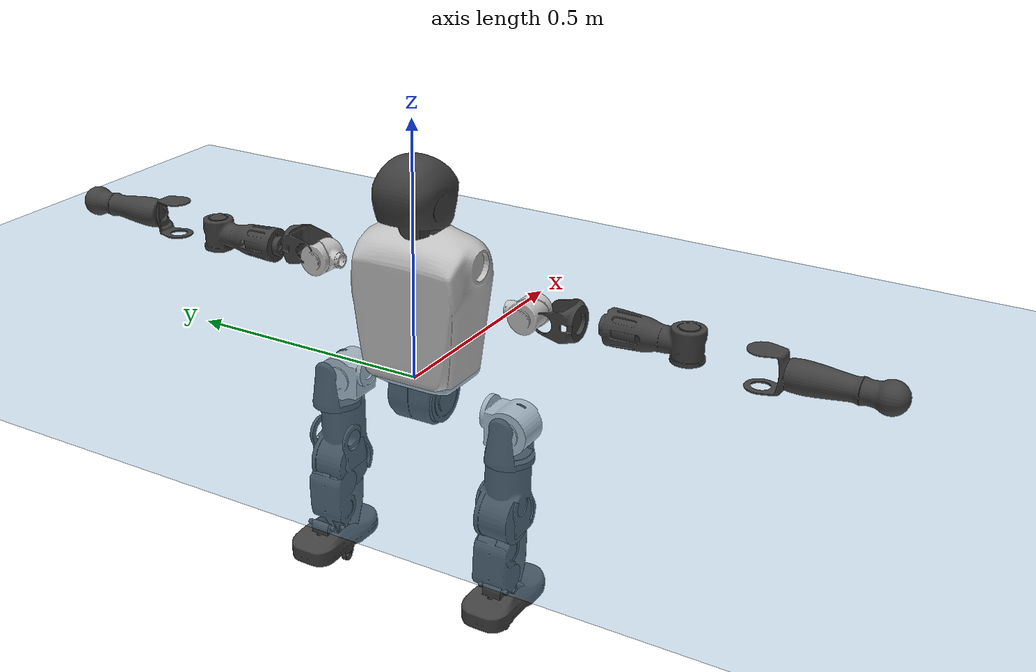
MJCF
<mujoco model="T1">
  <compiler angle="radian" assetdir="assets" balanceinertia="true" inertiafromgeom="false"/>

  <option timestep="0.005" density="1.2" viscosity="2e-05"/>

  <size nkey="1"/>

  <visual>
    <quality shadowsize="8192"/>
    <map shadowclip="0.5"/>
  </visual>

  <default>
    <default class="/">
      <joint armature="0.01" damping="0.01" frictionloss="0.1"/>
      <geom contype="0" conaffinity="0" group="1" solref="-1000 -80"/>
      <site size="0.01 0.005 0.005" group="5"/>
      <general forcelimited="true" biastype="affine" gainprm="25" biasprm="0 -25 -0.6"/>
      <default class="t1">
        <geom rgba="0.25 0.25 0.25 1"/>
        <default class="visual">
          <geom type="mesh" group="2"/>
        </default>
        <default class="collision">
          <geom group="3"/>
        </default>
        <default class="foot">
          <geom size="0.1115 0.05 0.015" type="box" condim="6" group="4" priority="1" solimp="0.015 1 0.015"/>
        </default>
        <default class="reward_collision_sphere">
          <geom group="5" rgba="1 0 0 1"/>
        </default>
      </default>
    </default>
  </default>

  <asset>
    <texture type="skybox" colorspace="auto" name="//unnamed_texture_0" builtin="gradient" rgb1="0.95 0.95 0.95" rgb2="0.95 0.95 0.95" width="100" height="600"/>
    <texture type="2d" colorspace="auto" name="texplane" builtin="checker" rgb1="0.345 0.575 0.748" rgb2="0.345 0.575 0.748" markrgb="1 1 1" width="512" height="512"/>
    <material name="MatPlane" class="/" texture="texplane" texuniform="true" texrepeat="2 2" specular="0.9"/>
    <mesh name="Trunk" class="/" file="Trunk.stl"/>
    <mesh name="H1" class="/" file="H1.stl"/>
    <mesh name="H2" class="/" file="H2.stl"/>
    <mesh name="AL1" class="/" file="AL1.stl"/>
    <mesh name="AL2" class="/" file="AL2.stl"/>
    <mesh name="AL3" class="/" file="AL3.stl"/>
    <mesh name="left_hand_link" class="/" file="left_hand_link.stl"/>
    <mesh name="AR1" class="/" file="AR1.stl"/>
    <mesh name="AR2" class="/" file="AR2.stl"/>
    <mesh name="AR3" class="/" file="AR3.stl"/>
    <mesh name="right_hand_link" class="/" file="right_hand_link.stl"/>
    <mesh name="Waist" class="/" file="Waist.stl"/>
    <mesh name="Hip_Pitch_Left" class="/" file="Hip_Pitch_Left.stl"/>
    <mesh name="Hip_Roll_Left" class="/" file="Hip_Roll_Left.stl"/>
    <mesh name="Hip_Yaw_Left" class="/" file="Hip_Yaw_Left.stl"/>
    <mesh name="Shank_Left" class="/" file="Shank_Left.stl"/>
    <mesh name="Ankle_Cross_Left" class="/" file="Ankle_Cross_Left.stl"/>
    <mesh name="left_foot_link" class="/" file="left_foot_link.stl"/>
    <mesh name="Hip_Pitch_Right" class="/" file="Hip_Pitch_Right.stl"/>
    <mesh name="Hip_Roll_Right" class="/" file="Hip_Roll_Right.stl"/>
    <mesh name="Hip_Yaw_Right" class="/" file="Hip_Yaw_Right.stl"/>
    <mesh name="Shank_Right" class="/" file="Shank_Right.stl"/>
    <mesh name="Ankle_Cross_Right" class="/" file="Ankle_Cross_Right.stl"/>
    <mesh name="right_foot_link" class="/" file="right_foot_link.stl"/>
  </asset>

  <worldbody>
    <geom name="floor" class="/" size="100 100 0.125" type="plane" group="0" material="MatPlane"/>
    <light name="toplight_shadow" class="/" pos="0 0 5" dir="0.0990148 0.0990148 -0.990148" type="directional" ambient="0.04 0.04 0.04" diffuse="0.55 0.55 0.55" specular="0.12 0.12 0.12"/>
    <light name="toplight_fill" class="/" pos="0 0 5" dir="0.0990148 0.0990148 -0.990148" type="directional" castshadow="false" ambient="0.04 0.04 0.04" diffuse="0.3 0.3 0.3" specular="0.08 0.08 0.08"/>
    <body name="trunk" childclass="t1" pos="-0.00134065 0.00991104 0.0094284" quat="0.999998 -0.0011085 -0.00151277 0.000356431">
      <inertial pos="0.0265374 -0.0191239 0.0577477" quat="0.997777 -0.066595 0.0022671 0.000924704" mass="15.5657" diaginertia="0.0208191 1.61931 0.0126464"/>
      <joint name="//unnamed_joint_0" type="free" armature="0" damping="0" frictionloss="0"/>
      <geom name="//unnamed_geom_1" class="visual" rgba="0.76 0.76 0.76 1" mesh="Trunk"/>
      <geom name="//unnamed_geom_2" class="collision" size="0.0803184 0.107091 0.160637" pos="0.0433893 0 0.0851925" type="box"/>
      <geom name="//unnamed_geom_3" class="reward_collision_sphere" size="0.123155" pos="0.0433893 0 0.0709937"/>
      <geom name="//unnamed_geom_4" class="reward_collision_sphere" size="0.0160637" pos="0.0433893 0.15127 0"/>
      <geom name="//unnamed_geom_5" class="reward_collision_sphere" size="0.0160637" pos="0.0433893 -0.15127 0"/>
      <geom name="//unnamed_geom_6" class="reward_collision_sphere" size="0.0160637" pos="0.0433893 0.190422 0.127789"/>
      <geom name="//unnamed_geom_7" class="reward_collision_sphere" size="0.0160637" pos="0.0433893 -0.190422 0.127789"/>
      <site name="imu" pos="0.0620538 0.0565653 -0.0418246" size="0.0107091"/>
      <camera name="track" pos="0 -3.55929 0" quat="0.707107 0.707107 0 0" mode="trackcom"/>
      <camera name="ego_camera" pos="0.088225 0 0.298174" quat="-0.5 -0.5 0.5 0.5"/>
      <body name="H1" pos="0.0546567 0.016086 0.155719" quat="1 0.000209899 -0.000472967 -0.000306656">
        <inertial pos="-0.00294736 -0.0217079 0.0479152" quat="0.806302 -0.026783 -0.0404033 0.589515" mass="0.68374" diaginertia="4.92989e-05 0.00503629 2.54757e-05"/>
        <joint name="AAHead_yaw" pos="0 0 0" axis="-0.0125751 -0.0500942 0.998665" stiffness="0.0310289" range="-1.57999 1.91439" armature="0.0124119" damping="0" frictionloss="0.212398"/>
        <geom name="//unnamed_geom_8" class="visual" mesh="H1"/>
        <body name="H2" pos="-0.00829414 0.00965045 0.0596793" quat="0.999997 -0.00139998 0.00175383 0.000251731">
          <inertial pos="0.0146056 0.0196365 0.0797377" quat="0.977981 0.179927 -0.0986768 -0.0379814" mass="0.715309" diaginertia="0.000401776 0.031821 0.000240281"/>
          <joint name="Head_pitch" pos="0 0 0" axis="0.0371525 -0.999214 0.0138508" range="-1.13019 0.391288" armature="0.0118089" damping="0" frictionloss="0.17886"/>
          <geom name="//unnamed_geom_9" class="visual" mesh="H2"/>
          <geom name="//unnamed_geom_10" class="collision" size="0.085673" pos="0.00723156 0 0.0780931"/>
          <geom name="//unnamed_geom_11" class="reward_collision_sphere" size="0.0963821" pos="0.0144631 0 0.0709937"/>
        </body>
      </body>
      <body name="AL1" pos="0.0554629 0.187126 0.167422" quat="0.99996 -0.00316009 0.00784215 -0.00284964">
        <inertial pos="-0.00342079 0.0910991 0.0103481" quat="0.528708 0.541075 -0.432448 0.490605" mass="0.664565" diaginertia="0.000230086 0.0175028 4.78836e-05"/>
        <joint name="Left_Shoulder_Pitch" pos="0 0 0" axis="0.0205453 0.999725 0.0112773" range="-3.45906 0.899974" armature="0.0111732" damping="0.0459058" frictionloss="0.114772"/>
        <geom name="//unnamed_geom_12" class="visual" rgba="0.76 0.76 0.76 1" mesh="AL1"/>
        <body name="AL2" pos="0.00351551 0.0678942 0.0137651" quat="0.999976 -0.00242427 -0.00246731 0.00603103">
          <inertial pos="-0.0145836 0.0486522 -0.0122426" quat="0.460976 0.574089 -0.508615 0.446356" mass="0.158526" diaginertia="7.0687e-05 0.00574075 2.3411e-05"/>
          <joint name="Left_Shoulder_Roll" pos="0 0 0" axis="-0.99989 -0.0120713 0.00861035" stiffness="0.0076602" range="-1.60004 1.72146" armature="0.0072311" damping="0.0173717" frictionloss="0.147702"/>
          <geom name="//unnamed_geom_13" class="visual" mesh="AL2"/>
          <body name="AL3" pos="-0.00338244 0.0882285 -0.0117293" quat="1 9.96499e-05 -1.38102e-05 -0.000276282">
            <inertial pos="0.01795 0.147133 0.0126457" quat="0.670528 0.740379 -0.00116863 -0.0472157" mass="0.822344" diaginertia="0.00226545 0.166942 8.01608e-05"/>
            <joint name="Left_Elbow_Pitch" pos="0 0 0" axis="-0.051344 -0.998395 0.0239081" range="-2.41149 1.91708" armature="0.013507" damping="0" frictionloss="0.127031"/>
            <geom name="//unnamed_geom_14" class="visual" mesh="AL3"/>
            <geom name="//unnamed_geom_15" class="collision" size="0.0321274 0.0803184" pos="0 0.0889821 0" quat="0.707105 0.707108 0 0" type="cylinder"/>
            <geom name="//unnamed_geom_16" class="reward_collision_sphere" size="0.0385528"/>
            <body name="left_hand_link" pos="-0.0110416 0.244237 0.0184468" quat="0.999994 -0.0013072 0.0020863 -0.00233869">
              <inertial pos="-0.00549427 0.200993 -0.0046501" quat="0.677068 0.735841 -0.00246137 -0.0105451" mass="0.363709" diaginertia="0.00190906 0.150882 4.14025e-05"/>
              <joint name="Left_Elbow_Yaw" pos="0 0 0" axis="-0.0473807 -0.00917676 0.998835" range="-2.09027 0.103363" armature="0.0110627" damping="0.106685" frictionloss="0.0255665"/>
              <geom name="//unnamed_geom_17" class="visual" mesh="left_hand_link"/>
              <geom name="//unnamed_geom_18" class="collision" size="0.0321274 0.0937048" pos="0 0.231354 0" quat="0.707105 0.707108 0 0" type="cylinder"/>
              <geom name="//unnamed_geom_19" class="reward_collision_sphere" size="0.0535456"/>
              <geom name="//unnamed_geom_20" class="reward_collision_sphere" size="0.0374819" pos="0 0.195761 0"/>
              <geom name="//unnamed_geom_21" class="reward_collision_sphere" size="0.0374819" pos="0 0.382623 0"/>
            </body>
          </body>
        </body>
      </body>
      <body name="AR1" pos="0.0387156 -0.186847 0.159303" quat="0.999979 -0.00169722 -0.00218971 -0.00578455">
        <inertial pos="0.0123517 -0.0794177 0.0177893" quat="0.450984 0.466752 -0.567235 0.506953" mass="0.4523" diaginertia="0.000239086 0.0172486 3.79382e-05"/>
        <joint name="Right_Shoulder_Pitch" pos="0 0 0" axis="0.0483061 -0.998341 0.0313283" range="-1.1659 3.37494" armature="0.00661772" damping="0.0907631" frictionloss="0.205019"/>
        <geom name="//unnamed_geom_22" class="visual" rgba="0.76 0.76 0.76 1" mesh="AR1"/>
        <body name="AR2" pos="0.0177421 -0.0818113 -0.00632032" quat="1 0.000408224 -0.000463979 0.00016489">
          <inertial pos="0.015284 -0.0483752 -0.00673962" quat="0.481942 0.544046 -0.455938 0.513679" mass="0.161066" diaginertia="5.8672e-05 0.00498527 2.33679e-05"/>
          <joint name="Right_Shoulder_Roll" pos="0 0 0" axis="-0.997732 -0.0208459 0.0640071" stiffness="0.0151609" range="-1.66489 1.64529" armature="0.0110752" damping="0.106772" frictionloss="0.0621116"/>
          <geom name="//unnamed_geom_23" class="visual" mesh="AR2"/>
          <body name="AR3" pos="-0.00234475 -0.115318 0.0102411" quat="0.999979 -0.00188886 0.00591012 0.00183251">
            <inertial pos="-0.00892015 -0.14602 0.00811503" quat="0.700485 0.710595 0.062973 -0.0202514" mass="1.03426" diaginertia="0.00212008 0.237417 0.000105632"/>
            <joint name="Right_Elbow_Pitch" pos="0 0 0" axis="-0.0405289 0.998819 0.026793" range="-2.14366 2.08472" armature="0.0114755" damping="0" frictionloss="0.0678269"/>
            <geom name="//unnamed_geom_24" class="visual" mesh="AR3"/>
            <geom name="//unnamed_geom_25" class="collision" size="0.0321274 0.0803184" pos="0 -0.0889821 0" quat="0.707105 0.707108 0 0" type="cylinder"/>
            <geom name="//unnamed_geom_26" class="reward_collision_sphere" size="0.0385528"/>
            <body name="right_hand_link" pos="0.0148304 -0.274636 -0.018809" quat="0.999977 0.000322595 -0.00335798 0.00584654">
              <inertial pos="-0.0030371 -0.208938 -0.00961768" quat="0.709406 0.703778 -0.0258234 -0.0277881" mass="0.37763" diaginertia="0.00123743 0.111034 3.74643e-05"/>
              <joint name="Right_Elbow_Yaw" pos="0 0 0" axis="0.00792208 -0.00395963 0.999961" range="-0.269312 2.50393" armature="0.0132232" damping="0.0273077" frictionloss="0.0114174"/>
              <geom name="//unnamed_geom_27" class="visual" mesh="right_hand_link"/>
              <geom name="//unnamed_geom_28" class="collision" size="0.0321274 0.0937048" pos="0 -0.231354 0" quat="0.707105 0.707108 0 0" type="cylinder"/>
              <geom name="//unnamed_geom_29" class="reward_collision_sphere" size="0.0535456"/>
              <geom name="//unnamed_geom_30" class="reward_collision_sphere" size="0.0374819" pos="0 -0.195761 0"/>
              <geom name="//unnamed_geom_31" class="reward_collision_sphere" size="0.0374819" pos="0 -0.382623 0"/>
            </body>
          </body>
        </body>
      </body>
      <body name="Waist" pos="0.0598755 0.00592208 -0.0646637" quat="0.999988 -0.000284089 -0.0033706 0.00345464">
        <inertial pos="0.0216021 -0.0077409 -0.00152593" quat="0.985817 0.00946509 -0.166185 -0.0213893" mass="4.34033" diaginertia="0.00151943 0.115699 0.000869101"/>
        <joint name="Waist" pos="0 0 0" axis="-0.0236447 -0.0406063 0.998895" stiffness="0.00645219" range="-1.32473 1.51315" armature="0.00388979" damping="0" frictionloss="0.0984014"/>
        <geom name="//unnamed_geom_32" class="visual" mesh="Waist"/>
        <body name="Hip_Pitch_Left" pos="-0.00658832 0.176595 0.0159702" quat="0.999994 0.00113726 0.0026458 -0.00208768">
          <inertial pos="0.000950458 -0.0283283 -0.0268104" quat="0.96618 0.250481 0.030044 0.0534051" mass="0.93551" diaginertia="0.000334632 0.0207595 0.000210166"/>
          <joint name="Left_Hip_Pitch" pos="0 0 0" axis="-0.00142615 0.999998 -0.00160479" range="-1.76746 1.21772" armature="0.000357008" damping="0" frictionloss="0.0548211"/>
          <geom name="//unnamed_geom_33" class="visual" rgba="0.76 0.76 0.76 1" mesh="Hip_Pitch_Left"/>
          <body name="Hip_Roll_Left" pos="-0.0175009 0.0113371 -0.00237336" quat="0.999998 6.50169e-05 -0.00192783 -0.000113984">
            <inertial pos="0.0125226 -0.000280928 -0.0494109" quat="0.687194 0.0237132 0.0776439 0.721924" mass="0.509815" diaginertia="0.000361721 0.0202447 7.91222e-05"/>
            <joint name="Left_Hip_Roll" pos="0 0 0" axis="-0.996757 0.0541031 0.0595752" range="-1.56134 0.0449733" armature="0.00104279" damping="0.0486634" frictionloss="0.173374"/>
            <geom name="//unnamed_geom_34" class="visual" mesh="Hip_Roll_Left"/>
            <geom name="//unnamed_geom_35" class="reward_collision_sphere" size="0.0589002"/>
            <body name="Hip_Yaw_Left" pos="0.0136528 -0.00155878 -0.0691025" quat="0.999994 -0.000860375 -0.00303798 -0.00119312">
              <inertial pos="0.0110198 -0.00894172 -0.0558837" quat="0.675801 -0.0271276 -0.0377493 0.735616" mass="3.08721" diaginertia="0.00567238 0.578037 0.000520348"/>
              <joint name="Left_Hip_Yaw" pos="0 0 0" axis="0.00335453 -0.0352188 -0.999374" range="-0.755492 0.666482" armature="0.00868869" damping="0.0589949" frictionloss="0.121055"/>
              <geom name="//unnamed_geom_36" class="visual" mesh="Hip_Yaw_Left"/>
              <geom name="//unnamed_geom_37" class="collision" size="0.0535456 0.085673" type="cylinder"/>
              <body name="Shank_Left" pos="-0.0289251 -0.00121105 -0.0752285" quat="0.999996 0.00254468 0.000754653 0.000151372">
                <inertial pos="0.00348074 -0.015747 -0.105161" quat="0.997193 0.00127448 -0.0270028 0.0698188" mass="2.78186" diaginertia="0.00701385 0.698401 0.000316419"/>
                <joint name="Left_Knee_Pitch" pos="0 0 0" axis="0.0104376 0.999649 -0.0243669" range="-0.230284 2.56075" armature="0.0117806" damping="0" frictionloss="0.149426"/>
                <geom name="//unnamed_geom_38" class="visual" mesh="Shank_Left"/>
                <geom name="//unnamed_geom_39" class="collision" size="0.0535456 0.0803184" pos="0 0 -0.0851925" type="cylinder"/>
                <geom name="//unnamed_geom_40" class="reward_collision_sphere" size="0.0696093"/>
                <body name="Ankle_Cross_Left" pos="-0.00622569 0.00138314 -0.212956" quat="0.999996 0.000943255 0.00218572 -0.00174568">
                  <inertial pos="0.00822254 -0.0145634 -0.0178409" quat="0.469812 0.525512 0.590776 0.392552" mass="0.0778959" diaginertia="4.92222e-06 0.000573387 2.15884e-06"/>
                  <joint name="Left_Ankle_Pitch" pos="0 0 0" axis="0.00394216 0.999865 -0.0159339" range="-1.22289 0.203383" armature="0.0164515" damping="0.0413935" frictionloss="0.0587803"/>
                  <geom name="//unnamed_geom_41" class="visual" mesh="Ankle_Cross_Left"/>
                  <body name="left_foot_link" pos="0.00749211 0.0139095 -0.0162584" quat="0.999984 -0.00253113 0.00033151 -0.00502922">
                    <inertial pos="0.0147044 0.00203352 0.00928718" quat="0.00253063 0.585133 0.00737722 0.8109" mass="0.950954" diaginertia="0.000780564 0.0433192 0.000359771"/>
                    <joint name="Left_Ankle_Roll" pos="0 0 0" axis="-0.999616 -0.00590627 0.0270579" range="-0.411496 0.44917" armature="0.0101309" damping="0.0455124" frictionloss="0.101499"/>
                    <geom name="//unnamed_geom_42" class="visual" mesh="left_foot_link"/>
                    <geom name="left_foot" class="foot" size="0.0659611 0.0182949 0.0145361" pos="0.00723156 0 -0.0106491"/>
                    <geom name="//unnamed_geom_44" class="reward_collision_sphere" size="0.0556874" pos="0.00723156 0 -0.0106491"/>
                    <geom name="//unnamed_geom_45" class="reward_collision_sphere" size="0.0321274" pos="0.0686998 -0.0409318 -0.0106491"/>
                    <geom name="//unnamed_geom_46" class="reward_collision_sphere" size="0.0321274" pos="-0.0506209 -0.0409318 -0.0106491"/>
                    <site name="left_foot" class="foot" pos="0.00723156 0 -0.0106491" size="0.0107091"/>
                  </body>
                </body>
              </body>
            </body>
          </body>
        </body>
        <body name="Hip_Pitch_Right" pos="0.00139005 -0.197678 -0.00842138" quat="0.999963 0.0070313 -0.00178234 -0.0046685">
          <inertial pos="0.0158594 0.0225678 -0.029383" quat="0.971378 -0.235136 -0.0243305 -0.0233222" mass="1.03582" diaginertia="0.000296816 0.0238489 0.000231411"/>
          <joint name="Right_Hip_Pitch" pos="0 0 0" axis="-0.0056702 -0.999415 0.0337168" range="-1.5391 2.1772" armature="0.0181628" damping="0" frictionloss="0.0947669"/>
          <geom name="//unnamed_geom_47" class="visual" rgba="0.76 0.76 0.76 1" mesh="Hip_Pitch_Right"/>
          <body name="Hip_Roll_Right" pos="-0.0179768 -0.00355792 -0.000546257" quat="0.999983 0.000373754 0.00569634 0.00124027">
            <inertial pos="0.00158776 -0.00973332 -0.0513862" quat="0.739081 -0.0124107 0.0717613 0.669669" mass="0.497132" diaginertia="0.000344771 0.020174 8.93988e-05"/>
            <joint name="Right_Hip_Roll" pos="0 0 0" axis="-0.999888 0.0119497 -0.00902895" stiffness="6.42135e-05" range="-0.588236 1.7254" armature="0.00997714" damping="0" frictionloss="0.0431102"/>
            <geom name="//unnamed_geom_48" class="visual" mesh="Hip_Roll_Right"/>
            <geom name="//unnamed_geom_49" class="reward_collision_sphere" size="0.0589002"/>
            <body name="Hip_Yaw_Right" pos="0.010402 0.00806179 -0.0625554" quat="0.999994 8.74815e-05 -0.0022519 -0.00245109">
              <inertial pos="-0.00786603 0.011883 -0.0455551" quat="0.739027 -0.00297751 -0.0194324 0.673388" mass="2.15344" diaginertia="0.00428764 0.339896 0.00048402"/>
              <joint name="Right_Hip_Yaw" pos="0 0 0" axis="0.0990929 -0.000821189 -0.995078" stiffness="0.0275978" range="-1.14279 0.830507" armature="0.00181451" damping="0.0929118" frictionloss="0.102548"/>
              <geom name="//unnamed_geom_50" class="visual" mesh="Hip_Yaw_Right"/>
              <geom name="//unnamed_geom_51" class="collision" size="0.0535456 0.085673" type="cylinder"/>
              <body name="Shank_Right" pos="-0.00938796 0.00446283 -0.110665" quat="0.99998 0.00128161 0.00429917 0.00447778">
                <inertial pos="-0.00374397 -0.000644114 -0.0718802" quat="0.998031 -0.0169318 -0.0449091 -0.0403834" mass="1.62551" diaginertia="0.00584066 0.546257 0.000283693"/>
                <joint name="Right_Knee_Pitch" pos="0 0 0" axis="0.0708477 -0.996998 0.0312472" range="-2.69008 -0.204819" armature="0.000379387" damping="0" frictionloss="0.115503"/>
                <geom name="//unnamed_geom_52" class="visual" mesh="Shank_Right"/>
                <geom name="//unnamed_geom_53" class="collision" size="0.0535456 0.0803184" pos="0 0 -0.0851925" type="cylinder"/>
                <geom name="//unnamed_geom_54" class="reward_collision_sphere" size="0.0696093"/>
                <body name="Ankle_Cross_Right" pos="0.0127625 -0.00893404 -0.204304" quat="0.999998 -0.000895952 -0.000313644 -0.00180052">
                  <inertial pos="0.000556212 0.0132735 -0.00577676" quat="0.399078 0.558185 0.562156 0.46168" mass="0.0669448" diaginertia="5.29864e-06 0.000421048 1.50798e-06"/>
                  <joint name="Right_Ankle_Pitch" pos="0 0 0" axis="0.0046415 -0.998302 -0.0580735" stiffness="0.0794069" range="-0.0237831 1.20088" armature="0.0109316" damping="0" frictionloss="0.148559"/>
                  <geom name="//unnamed_geom_55" class="visual" mesh="Ankle_Cross_Right"/>
                  <body name="right_foot_link" pos="-0.0172739 -0.00224792 0.00131812" quat="0.999999 0.000202123 -0.000726969 0.00130584">
                    <inertial pos="0.0186457 0.00824713 -0.00831429" quat="0.00781851 0.613082 0.00129113 0.789979" mass="0.776737" diaginertia="0.000520575 0.0478449 0.000349342"/>
                    <joint name="Right_Ankle_Roll" pos="0 0 0" axis="-0.997688 -0.0507911 0.0451645" stiffness="0.0284117" range="-0.0778928 0.444131" armature="0.00803965" damping="0.0886693" frictionloss="0.0721718"/>
                    <geom name="//unnamed_geom_56" class="visual" mesh="right_foot_link"/>
                    <geom name="right_foot" class="foot" size="0.108616 0.07218 0.0218305" pos="0.00723156 0 -0.0106491"/>
                    <geom name="//unnamed_geom_58" class="reward_collision_sphere" size="0.0428365"/>
                    <geom name="//unnamed_geom_59" class="reward_collision_sphere" size="0.0321274" pos="0.00723156 0 -0.0106491"/>
                    <geom name="//unnamed_geom_60" class="reward_collision_sphere" size="0.0321274" pos="0.0686998 0.0409318 -0.0106491"/>
                    <geom name="//unnamed_geom_61" class="reward_collision_sphere" size="0.0321274" pos="-0.0506209 0.0409318 -0.0106491"/>
                    <site name="right_foot" class="foot" pos="0.00723156 0 -0.0106491" size="0.0107091"/>
                  </body>
                </body>
              </body>
            </body>
          </body>
        </body>
      </body>
    </body>
  </worldbody>

  <contact>
    <pair class="/" geom1="floor" geom2="left_foot" name="//unnamed_contact_0"/>
    <pair class="/" geom1="floor" geom2="right_foot" name="//unnamed_contact_1"/>
  </contact>

  <actuator>
    <general name="AAHead_yaw" class="/" joint="AAHead_yaw" forcerange="-5.07685 5.07685" gainprm="36.5618" biasprm="0 -36.5618 -0.730134"/>
    <general name="Head_pitch" class="/" joint="Head_pitch" forcerange="-7.14929 7.14929" gainprm="36.5618" biasprm="0 -36.5618 -0.730134"/>
    <general name="Left_Shoulder_Pitch" class="/" joint="Left_Shoulder_Pitch" forcerange="-28.3028 28.3028" gainprm="36.5618" biasprm="0 -36.5618 -0.730134"/>
    <general name="Left_Shoulder_Roll" class="/" joint="Left_Shoulder_Roll" forcerange="-25.8188 25.8188" gainprm="36.5618" biasprm="0 -36.5618 -0.730134"/>
    <general name="Left_Elbow_Pitch" class="/" joint="Left_Elbow_Pitch" forcerange="-18.2021 18.2021" gainprm="36.5618" biasprm="0 -36.5618 -0.730134"/>
    <general name="Left_Elbow_Yaw" class="/" joint="Left_Elbow_Yaw" forcerange="-26.036 26.036" gainprm="36.5618" biasprm="0 -36.5618 -0.730134"/>
    <general name="Right_Shoulder_Pitch" class="/" joint="Right_Shoulder_Pitch" forcerange="-12.6863 12.6863" gainprm="36.5618" biasprm="0 -36.5618 -0.730134"/>
    <general name="Right_Shoulder_Roll" class="/" joint="Right_Shoulder_Roll" forcerange="-28.0417 28.0417" gainprm="36.5618" biasprm="0 -36.5618 -0.730134"/>
    <general name="Right_Elbow_Pitch" class="/" joint="Right_Elbow_Pitch" forcerange="-6.53645 6.53645" gainprm="36.5618" biasprm="0 -36.5618 -0.730134"/>
    <general name="Right_Elbow_Yaw" class="/" joint="Right_Elbow_Yaw" forcerange="-12.2529 12.2529" gainprm="36.5618" biasprm="0 -36.5618 -0.730134"/>
    <general name="Waist" class="/" joint="Waist" forcerange="-20.3848 20.3848" gainprm="36.5618" biasprm="0 -36.5618 -0.730134"/>
    <general name="Left_Hip_Pitch" class="/" joint="Left_Hip_Pitch" forcerange="-41.066 41.066" gainprm="36.5618" biasprm="0 -36.5618 -0.730134"/>
    <general name="Left_Hip_Roll" class="/" joint="Left_Hip_Roll" forcerange="-14.1203 14.1203" gainprm="36.5618" biasprm="0 -36.5618 -0.730134"/>
    <general name="Left_Hip_Yaw" class="/" joint="Left_Hip_Yaw" forcerange="-50.9971 50.9971" gainprm="36.5618" biasprm="0 -36.5618 -0.730134"/>
    <general name="Left_Knee_Pitch" class="/" joint="Left_Knee_Pitch" forcerange="-48.4625 48.4625" gainprm="36.5618" biasprm="0 -36.5618 -0.730134"/>
    <general name="Left_Ankle_Pitch" class="/" joint="Left_Ankle_Pitch" forcerange="-23.8487 23.8487" gainprm="36.5618" biasprm="0 -36.5618 -0.730134"/>
    <general name="Left_Ankle_Roll" class="/" joint="Left_Ankle_Roll" forcerange="-6.0886 6.0886" gainprm="36.5618" biasprm="0 -36.5618 -0.730134"/>
    <general name="Right_Hip_Pitch" class="/" joint="Right_Hip_Pitch" forcerange="-47.7323 47.7323" gainprm="36.5618" biasprm="0 -36.5618 -0.730134"/>
    <general name="Right_Hip_Roll" class="/" joint="Right_Hip_Roll" forcerange="-28.0494 28.0494" gainprm="36.5618" biasprm="0 -36.5618 -0.730134"/>
    <general name="Right_Hip_Yaw" class="/" joint="Right_Hip_Yaw" forcerange="-10.2418 10.2418" gainprm="36.5618" biasprm="0 -36.5618 -0.730134"/>
    <general name="Right_Knee_Pitch" class="/" joint="Right_Knee_Pitch" forcerange="-65.8359 65.8359" gainprm="36.5618" biasprm="0 -36.5618 -0.730134"/>
    <general name="Right_Ankle_Pitch" class="/" joint="Right_Ankle_Pitch" forcerange="-27.3316 27.3316" gainprm="36.5618" biasprm="0 -36.5618 -0.730134"/>
    <general name="Right_Ankle_Roll" class="/" joint="Right_Ankle_Roll" forcerange="-23.7165 23.7165" gainprm="36.5618" biasprm="0 -36.5618 -0.730134"/>
  </actuator>

  <sensor>
    <gyro site="imu" name="imu_angular_velocity"/>
    <velocimeter site="imu" name="imu_linear_velocity"/>
    <framelinvel objtype="site" objname="left_foot" name="left_foot_global_linear_velocity"/>
    <framelinvel objtype="site" objname="right_foot" name="right_foot_global_linear_velocity"/>
  </sensor>

  <keyframe>
    <key name="home" qpos="0 0 0.6385 1 0 0 0 0 0 0 1.4 0 -0.4 0 -1.4 0 0.4 0 -0.4 0 0 0.8 -0.4 0 0.4 0 0 -0.8 0.4 0"/>
  </keyframe>
</mujoco>
